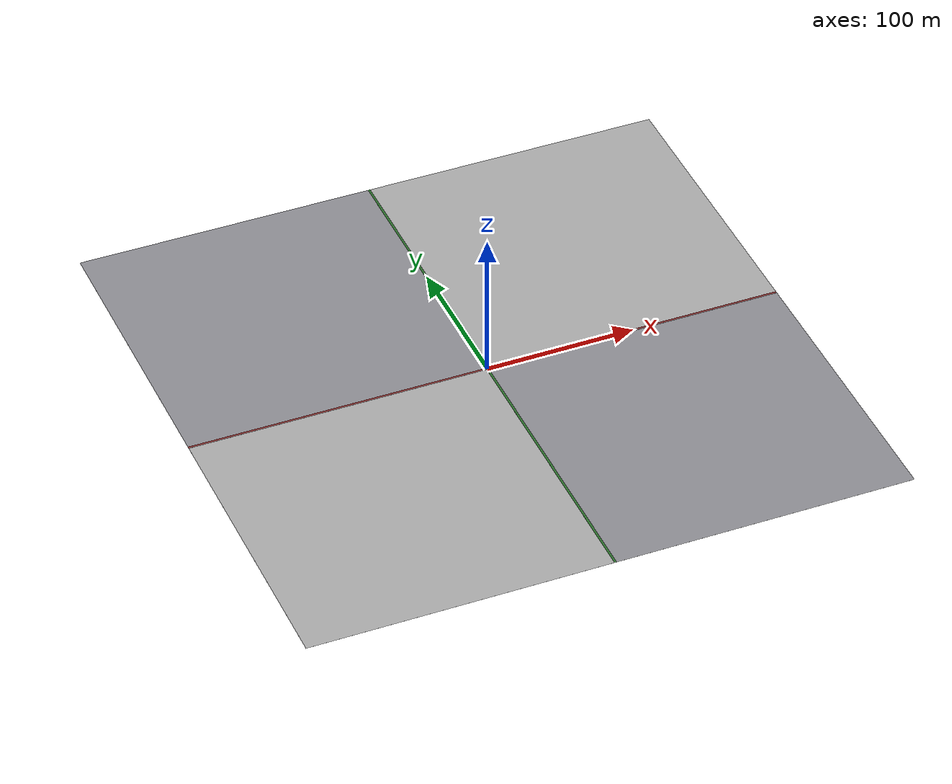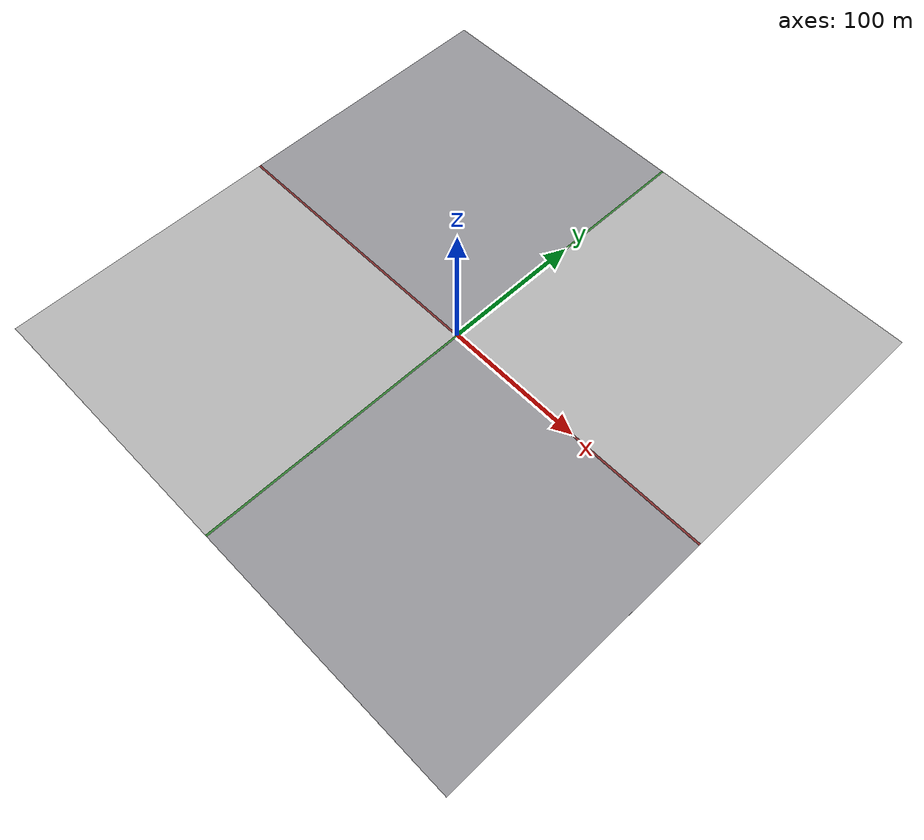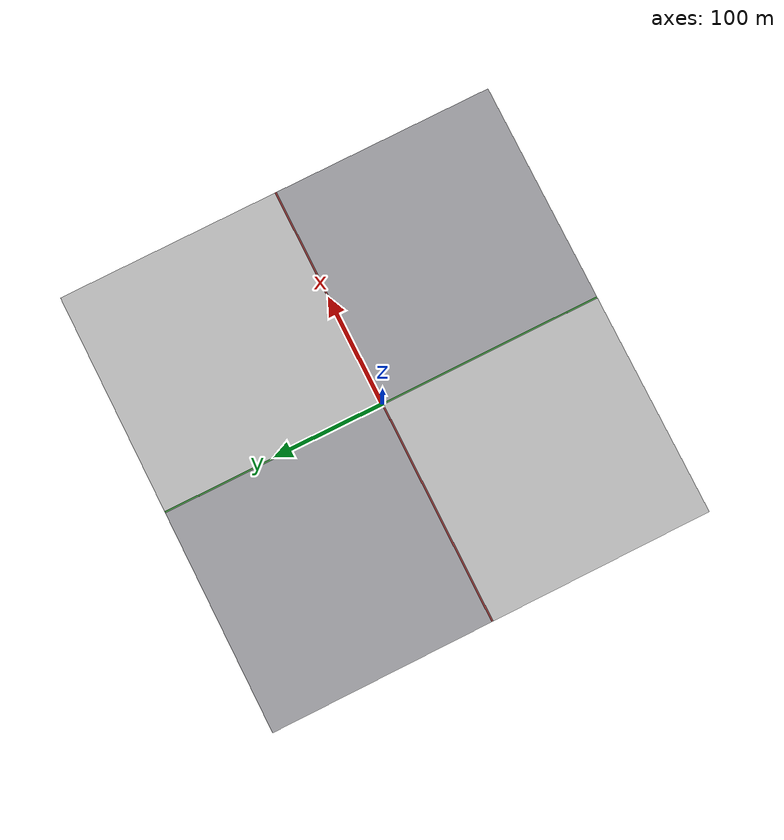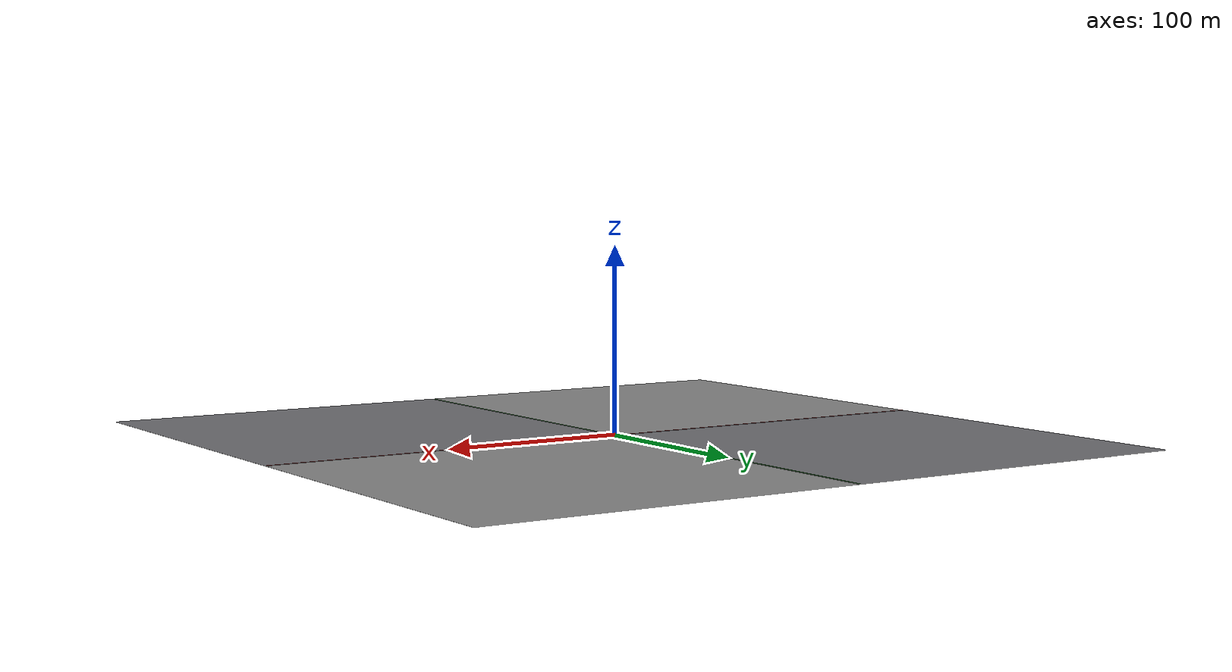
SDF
<?xml version="1.0" encoding="UTF-8"?>
<!-- Visual-only ground markers: red = +x, green = +y, 200 m quadrant tiles. -->
<sdf version="1.10">
  <model name="ground_markers">
    <static>true</static>
    <link name="link">
      <visual name="quadrant_pp">
        <cast_shadows>false</cast_shadows>
        <pose>100 100 0.01 0 0 0</pose>
        <geometry><box><size>200 200 0.02</size></box></geometry>
        <material>
          <ambient>0.72 0.72 0.72 1</ambient>
          <diffuse>0.72 0.72 0.72 1</diffuse>
        </material>
      </visual>
      <visual name="quadrant_nn">
        <cast_shadows>false</cast_shadows>
        <pose>-100 -100 0.01 0 0 0</pose>
        <geometry><box><size>200 200 0.02</size></box></geometry>
        <material>
          <ambient>0.72 0.72 0.72 1</ambient>
          <diffuse>0.72 0.72 0.72 1</diffuse>
        </material>
      </visual>
      <visual name="quadrant_pn">
        <cast_shadows>false</cast_shadows>
        <pose>100 -100 0.01 0 0 0</pose>
        <geometry><box><size>200 200 0.02</size></box></geometry>
        <material>
          <ambient>0.6 0.6 0.62 1</ambient>
          <diffuse>0.6 0.6 0.62 1</diffuse>
        </material>
      </visual>
      <visual name="quadrant_np">
        <cast_shadows>false</cast_shadows>
        <pose>-100 100 0.01 0 0 0</pose>
        <geometry><box><size>200 200 0.02</size></box></geometry>
        <material>
          <ambient>0.6 0.6 0.62 1</ambient>
          <diffuse>0.6 0.6 0.62 1</diffuse>
        </material>
      </visual>
      <visual name="axis_x_red">
        <cast_shadows>false</cast_shadows>
        <pose>0 0 0.03 0 0 0</pose>
        <geometry><box><size>400 1.5 0.02</size></box></geometry>
        <material>
          <ambient>0.55 0.2 0.2 1</ambient>
          <diffuse>0.55 0.2 0.2 1</diffuse>
        </material>
      </visual>
      <visual name="axis_y_green">
        <cast_shadows>false</cast_shadows>
        <pose>0 0 0.03 0 0 0</pose>
        <geometry><box><size>1.5 400 0.02</size></box></geometry>
        <material>
          <ambient>0.2 0.5 0.2 1</ambient>
          <diffuse>0.2 0.5 0.2 1</diffuse>
        </material>
      </visual>
    </link>
  </model>
</sdf>
